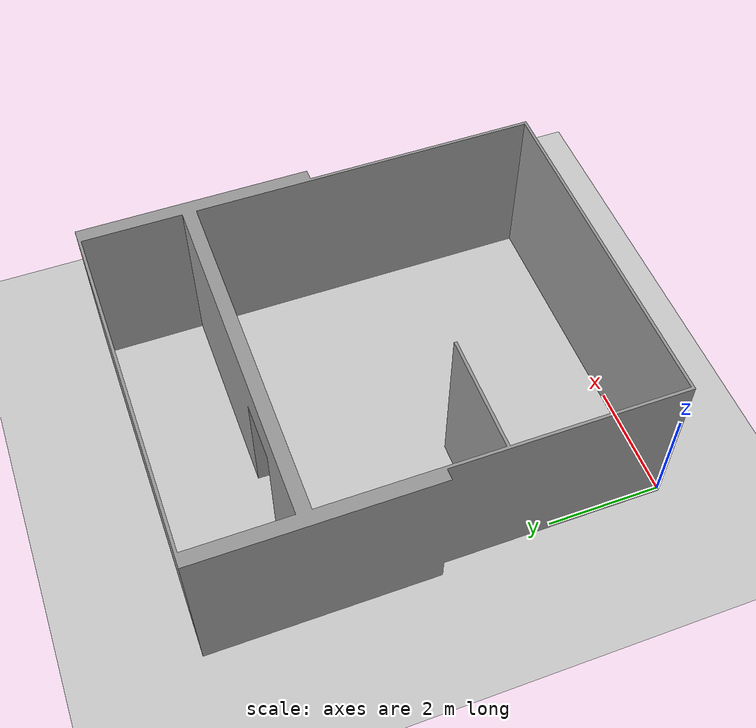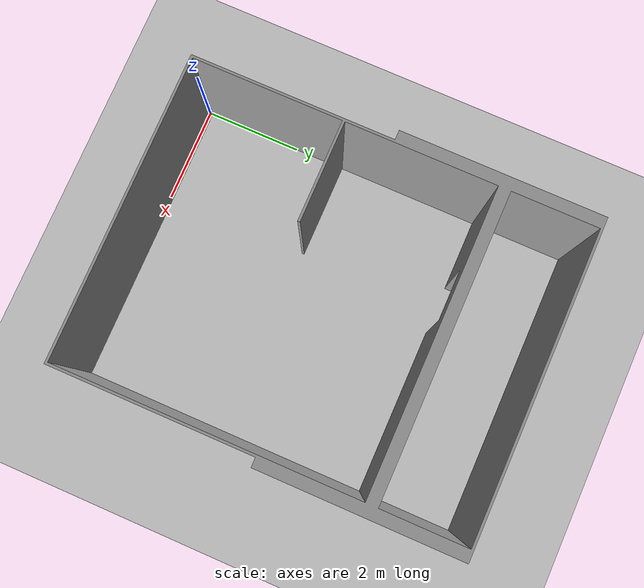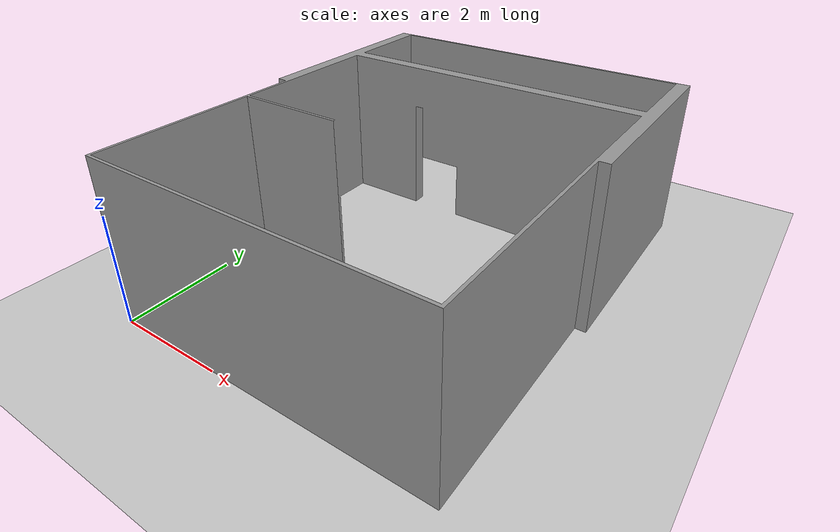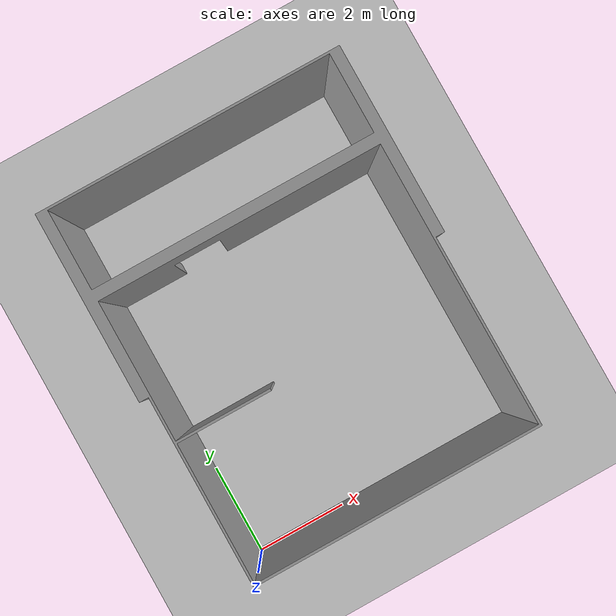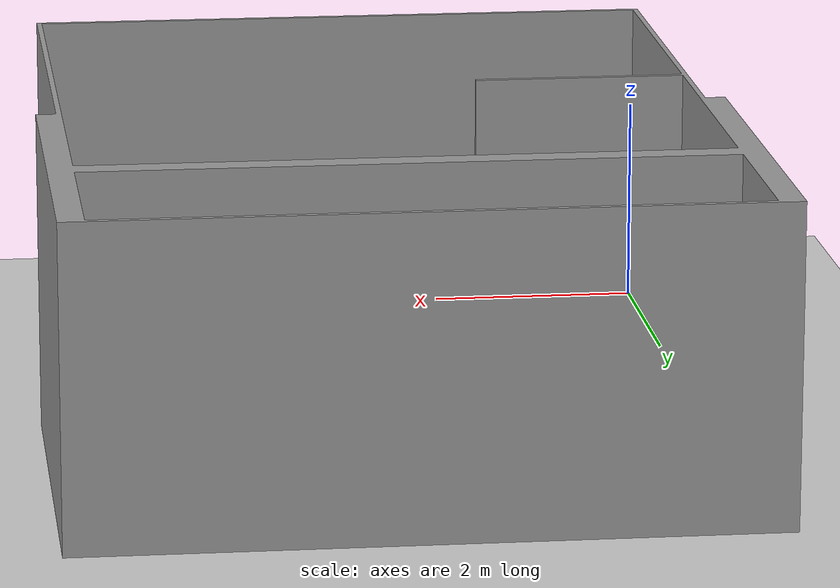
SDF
<?xml version="1.0" ?>
<sdf version="1.6">
  <world name="ai4work_forschungsraum_v4.2">

    <physics name="default_physics" default="0" type="ode">
      <max_step_size>0.001</max_step_size>
      <real_time_factor>1</real_time_factor>
      <real_time_update_rate>1000</real_time_update_rate>
      <ode>
        <solver>
          <type>quick</type>
          <iters>150</iters>
          <sor>1.400000</sor>
          <use_dynamic_moi_rescaling>1</use_dynamic_moi_rescaling>
        </solver>
        <constraints>
          <cfm>0.00001</cfm>
          <erp>0.2</erp>
          <contact_max_correcting_vel>2000.000000</contact_max_correcting_vel>
          <contact_surface_layer>0.01000</contact_surface_layer>
        </constraints>
      </ode>
    </physics>

    <gravity>0 0 -9.8</gravity>
    <magnetic_field>6e-06 2.3e-05 -4.2e-05</magnetic_field>
    <atmosphere type='adiabatic'/>

    <scene>
      <ambient>0.6 0.6 0.6 1</ambient>
      <background>0.4 0.4 0.4 1</background>
      <shadows>true</shadows>
      <grid>false</grid>
    </scene>

    <!-- Sun -->
    <include>
      <uri>model://sun</uri>
    </include>

    <!-- Ground Plane -->
    <model name='ground_plane'>
      <static>true</static>
      <link name='link'>
        <collision name='collision'>
          <geometry>
            <plane>
              <normal>0 0 1</normal>
              <size>100 100</size>
            </plane>
          </geometry>
          <surface>
            <contact>
              <collide_bitmask>65535</collide_bitmask>
              <ode/>
            </contact>
            <friction>
              <ode>
                <mu>100</mu>
                <mu2>50</mu2>
              </ode>
              <torsional>
                <ode/>
              </torsional>
            </friction>
            <bounce/>
          </surface>
          <max_contacts>10</max_contacts>
        </collision>
        <visual name='visual'>
          <cast_shadows>false</cast_shadows>
          <geometry>
            <plane>
              <normal>0 0 1</normal>
              <size>100 100</size>
            </plane>
          </geometry>
          <material>
            <script>
              <uri>file://media/materials/scripts/gazebo.material</uri>
              <name>Gazebo/Grey</name>
            </script>
          </material>
        </visual>
        <self_collide>false</self_collide>
        <enable_wind>false</enable_wind>
        <kinematic>false</kinematic>
      </link>
    </model>

    <!-- AI4Work Research Room Model -->
    <include>
      <uri>model://ai4work_forschungsraum_v4.2</uri>
      <pose>0.0 0.0 0.0 0.0 0.0 0.0</pose>
      <static>true</static>
    </include>

  </world>
</sdf>

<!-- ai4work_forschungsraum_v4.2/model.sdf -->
<sdf version="1.6">
  <model name="ai4work_forschungsraum_v4.2">
    <static>true</static>
    <link name="link">
      <visual name="visual">
        <geometry>
          <mesh>
            <uri>model://ai4work_forschungsraum_v4.2/ai4work_forschungsraum_v4.stl</uri>
            <scale>1 1 1</scale>
          </mesh>
        </geometry>
        <material>
          <script>
            <uri>file://media/materials/scripts/gazebo.material</uri>
            <name>Gazebo/Grey</name>
          </script>
        </material>
      </visual>
      <collision name="collision">
        <geometry>
          <mesh>
            <uri>model://ai4work_forschungsraum_v4.2/ai4work_forschungsraum_v4.stl</uri>
            <scale>1 1 1</scale>
          </mesh>
        </geometry>
        <surface>
          <contact>
            <ode>
              <max_vel>0.1</max_vel>
              <min_depth>0.001</min_depth>
            </ode>
          </contact>
          <friction>
            <ode>
              <mu>1</mu>
              <mu2>1</mu2>
            </ode>
          </friction>
        </surface>
      </collision>
    </link>
  </model>
</sdf>
